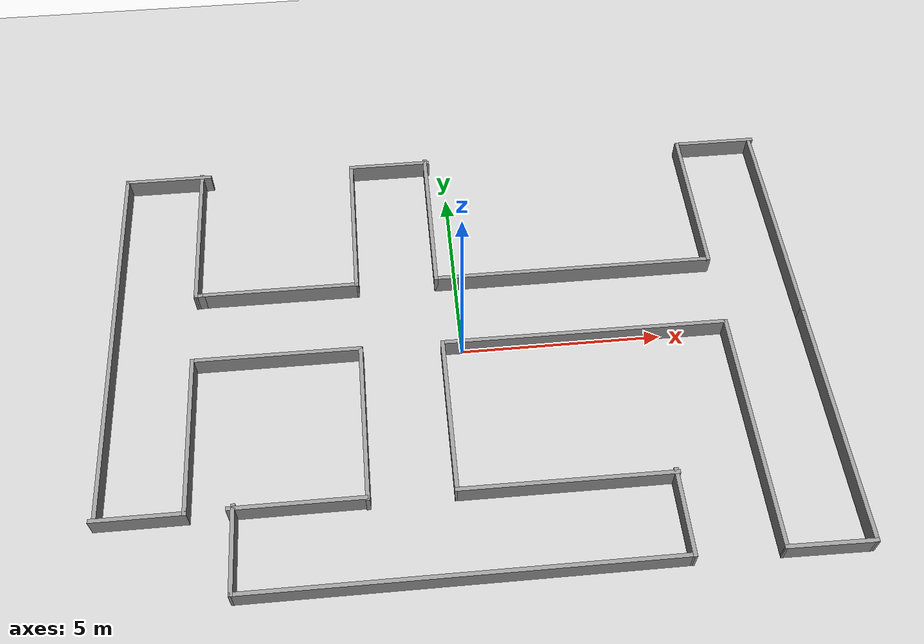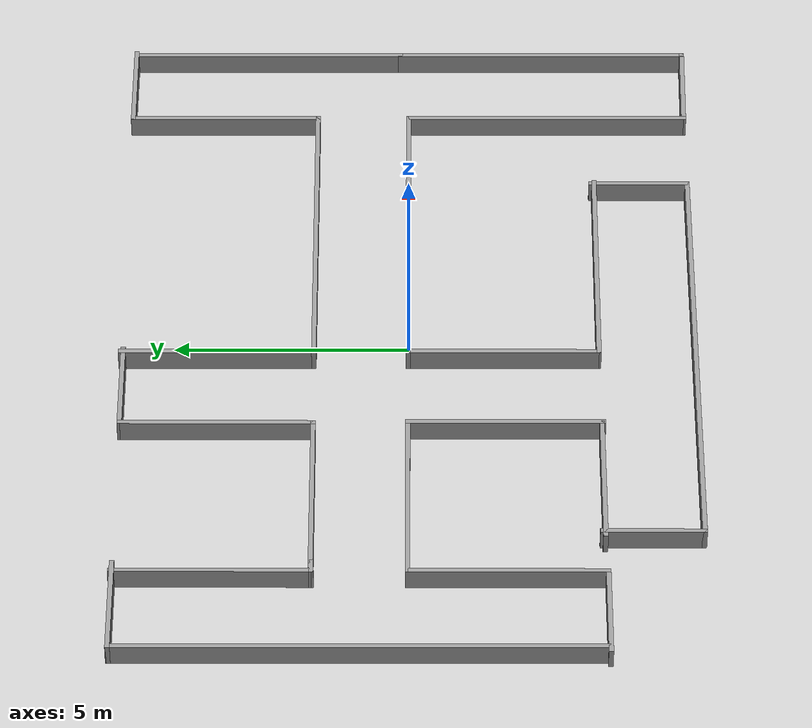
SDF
<sdf version="1.4">
 <world name="default">
  <light name="sun" type="directional">
   <pose>0 0 10 0 -0 0</pose>
   <diffuse>0.8 0.8 0.8 1</diffuse>
   <specular>0.2 0.2 0.2 1</specular>
   <attenuation>
    <range>1000</range>
    <constant>0.9</constant>
    <linear>0.01</linear>
    <quadratic>0.001</quadratic>
   </attenuation>
   <direction>-0.5 0.1 -0.9</direction>
  </light>
  <model name="ground_plane">
   <static>1</static>
   <link name="link">
    <collision name="collision">
     <geometry><plane><normal>0 0 1</normal><size>100 100</size></plane></geometry>
     <surface><friction><ode><mu>100</mu><mu2>50</mu2></ode></friction></surface>
    </collision>
    <visual name="visual">
     <cast_shadows>0</cast_shadows>
     <geometry><plane><normal>0 0 1</normal><size>100 100</size></plane></geometry>
     <material>
      <script><uri>file://media/materials/scripts/gazebo.material</uri><name>Gazebo/Grey</name></script>
     </material>
    </visual>
    <velocity_decay><linear>0</linear><angular>0</angular></velocity_decay>
   </link>
  </model>
  <model name="const_lane_map">
   <link name="Wall_20">
    <collision name="Wall_20_Collision">
     <geometry><box><size>4.2 0.1 0.5</size></box></geometry>
     <pose>0 0 0.25 0 -0 0</pose>
    </collision>
    <visual name="Wall_20_Visual">
     <pose>0 0 0.25 0 -0 0</pose>
     <geometry><box><size>4.2 0.1 0.5</size></box></geometry>
     <material>
      <script><uri>file://media/materials/scripts/gazebo.material</uri><name>Gazebo/Grey</name></script>
     </material>
    </visual>
    <pose>-0.49 4.06683 0 0 -0 1.5708</pose>
   </link>
   <link name="Wall_23">
    <collision name="Wall_23_Collision">
     <geometry><box><size>3.95 0.1 0.5</size></box></geometry>
     <pose>0 0 0.25 0 -0 0</pose>
    </collision>
    <visual name="Wall_23_Visual">
     <pose>0 0 0.25 0 -0 0</pose>
     <geometry><box><size>3.95 0.1 0.5</size></box></geometry>
     <material>
      <script><uri>file://media/materials/scripts/gazebo.material</uri><name>Gazebo/Grey</name></script>
     </material>
    </visual>
    <pose>-4.461 2.00283 0 0 -0 3.14159</pose>
   </link>
   <link name="Wall_26">
    <collision name="Wall_26_Collision">
     <geometry><box><size>4.2 0.1 0.5</size></box></geometry>
     <pose>0 0 0.25 0 -0 0</pose>
    </collision>
    <visual name="Wall_26_Visual">
     <pose>0 0 0.25 0 -0 0</pose>
     <geometry><box><size>4.2 0.1 0.5</size></box></geometry>
     <material>
      <script><uri>file://media/materials/scripts/gazebo.material</uri><name>Gazebo/Grey</name></script>
     </material>
    </visual>
    <pose>-6.613 4.04083 0 0 -0 1.5708</pose>
   </link>
   <link name="Wall_28">
    <collision name="Wall_28_Collision">
     <geometry><box><size>0.327317 0.1 0.5</size></box></geometry>
     <pose>0 0 0.25 0 -0 0</pose>
    </collision>
    <visual name="Wall_28_Visual">
     <pose>0 0 0.25 0 -0 0</pose>
     <geometry><box><size>0.327317 0.1 0.5</size></box></geometry>
     <material>
      <script><uri>file://media/materials/scripts/gazebo.material</uri><name>Gazebo/Grey</name></script>
     </material>
    </visual>
    <pose>-6.4995 1.99683 0 0 0 -3.08878</pose>
   </link>
   <link name="Wall_3">
    <collision name="Wall_3_Collision">
     <geometry><box><size>10.183 0.1 0.5</size></box></geometry>
     <pose>0 0 0.25 0 -0 0</pose>
    </collision>
    <visual name="Wall_3_Visual">
     <pose>0 0 0.25 0 -0 0</pose>
     <geometry><box><size>10.183 0.1 0.5</size></box></geometry>
     <material>
      <script><uri>file://media/materials/scripts/gazebo.material</uri><name>Gazebo/Grey</name></script>
     </material>
    </visual>
    <pose>-8.622 1.01833 0 0 0 -1.5708</pose>
   </link>
   <link name="Wall_30">
    <collision name="Wall_30_Collision">
     <geometry><box><size>4.159 0.1 0.5</size></box></geometry>
     <pose>0 0 0.25 0 -0 0</pose>
    </collision>
    <visual name="Wall_30_Visual">
     <pose>0 0 0.25 0 -0 0</pose>
     <geometry><box><size>4.159 0.1 0.5</size></box></geometry>
     <material>
      <script><uri>file://media/materials/scripts/gazebo.material</uri><name>Gazebo/Grey</name></script>
     </material>
    </visual>
    <pose>-2.533 4.03233 0 0 0 -1.57228</pose>
   </link>
   <link name="Wall_33">
    <collision name="Wall_33_Collision">
     <geometry><box><size>2.2 0.1 0.5</size></box></geometry>
     <pose>0 0 0.25 0 -0 0</pose>
    </collision>
    <visual name="Wall_33_Visual">
     <pose>0 0 0.25 0 -0 0</pose>
     <geometry><box><size>2.2 0.1 0.5</size></box></geometry>
     <material>
      <script><uri>file://media/materials/scripts/gazebo.material</uri><name>Gazebo/Grey</name></script>
     </material>
    </visual>
    <pose>-1.48 6.06183 0 0 -0 0</pose>
   </link>
   <link name="Wall_35">
    <collision name="Wall_35_Collision">
     <geometry><box><size>7.2 0.1 0.5</size></box></geometry>
     <pose>0 0 0.25 0 -0 0</pose>
    </collision>
    <visual name="Wall_35_Visual">
     <pose>0 0 0.25 0 -0 0</pose>
     <geometry><box><size>7.2 0.1 0.5</size></box></geometry>
     <material>
      <script><uri>file://media/materials/scripts/gazebo.material</uri><name>Gazebo/Grey</name></script>
     </material>
    </visual>
    <pose>3.06 2.01683 0 0 -0 0</pose>
   </link>
   <link name="Wall_38">
    <collision name="Wall_38_Collision">
     <geometry><box><size>4.2 0.1 0.5</size></box></geometry>
     <pose>0 0 0.25 0 -0 0</pose>
    </collision>
    <visual name="Wall_38_Visual">
     <pose>0 0 0.25 0 -0 0</pose>
     <geometry><box><size>4.2 0.1 0.5</size></box></geometry>
     <material>
      <script><uri>file://media/materials/scripts/gazebo.material</uri><name>Gazebo/Grey</name></script>
     </material>
    </visual>
    <pose>6.61 4.06683 0 0 -0 1.5708</pose>
   </link>
   <link name="Wall_39">
    <collision name="Wall_39_Collision">
     <geometry><box><size>2.2 0.1 0.5</size></box></geometry>
     <pose>0 0 0.25 0 -0 0</pose>
    </collision>
    <visual name="Wall_39_Visual">
     <pose>0 0 0.25 0 -0 0</pose>
     <geometry><box><size>2.2 0.1 0.5</size></box></geometry>
     <material>
      <script><uri>file://media/materials/scripts/gazebo.material</uri><name>Gazebo/Grey</name></script>
     </material>
    </visual>
    <pose>7.66 6.11683 0 0 -0 0</pose>
   </link>
   <link name="Wall_44">
    <collision name="Wall_44_Collision">
     <geometry><box><size>6.415 0.1 0.5</size></box></geometry>
     <pose>0 0 0.25 0 -0 0</pose>
    </collision>
    <visual name="Wall_44_Visual">
     <pose>0 0 0.25 0 -0 0</pose>
     <geometry><box><size>6.415 0.1 0.5</size></box></geometry>
     <material>
      <script><uri>file://media/materials/scripts/gazebo.material</uri><name>Gazebo/Grey</name></script>
     </material>
    </visual>
    <pose>8.639 -2.95867 0 0 -0 1.5708</pose>
   </link>
   <link name="Wall_46">
    <collision name="Wall_46_Collision">
     <geometry><box><size>5.95 0.1 0.5</size></box></geometry>
     <pose>0 0 0.25 0 -0 0</pose>
    </collision>
    <visual name="Wall_46_Visual">
     <pose>0 0 0.25 0 -0 0</pose>
     <geometry><box><size>5.95 0.1 0.5</size></box></geometry>
     <material>
      <script><uri>file://media/materials/scripts/gazebo.material</uri><name>Gazebo/Grey</name></script>
     </material>
    </visual>
    <pose>8.639 3.12383 0 0 -0 1.5708</pose>
   </link>
   <link name="Wall_48">
    <collision name="Wall_48_Collision">
     <geometry><box><size>2.12318 0.1 0.5</size></box></geometry>
     <pose>0 0 0.25 0 -0 0</pose>
    </collision>
    <visual name="Wall_48_Visual">
     <pose>0 0 0.25 0 -0 0</pose>
     <geometry><box><size>2.12318 0.1 0.5</size></box></geometry>
     <material>
      <script><uri>file://media/materials/scripts/gazebo.material</uri><name>Gazebo/Grey</name></script>
     </material>
    </visual>
    <pose>7.6275 -6.10267 0 0 0 -0.013346</pose>
   </link>
   <link name="Wall_5">
    <collision name="Wall_5_Collision">
     <geometry><box><size>2.19 0.1 0.5</size></box></geometry>
     <pose>0 0 0.25 0 -0 0</pose>
    </collision>
    <visual name="Wall_5_Visual">
     <pose>0 0 0.25 0 -0 0</pose>
     <geometry><box><size>2.19 0.1 0.5</size></box></geometry>
     <material>
      <script><uri>file://media/materials/scripts/gazebo.material</uri><name>Gazebo/Grey</name></script>
     </material>
    </visual>
    <pose>-7.665 -4.08017 0 0 -0 3.14159</pose>
   </link>
   <link name="Wall_50">
    <collision name="Wall_50_Collision">
     <geometry><box><size>6.2 0.1 0.5</size></box></geometry>
     <pose>0 0 0.25 0 -0 0</pose>
    </collision>
    <visual name="Wall_50_Visual">
     <pose>0 0 0.25 0 -0 0</pose>
     <geometry><box><size>6.2 0.1 0.5</size></box></geometry>
     <material>
      <script><uri>file://media/materials/scripts/gazebo.material</uri><name>Gazebo/Grey</name></script>
     </material>
    </visual>
    <pose>6.616 -3.03917 0 0 -0 1.5708</pose>
   </link>
   <link name="Wall_51">
    <collision name="Wall_51_Collision">
     <geometry><box><size>7.2 0.1 0.5</size></box></geometry>
     <pose>0 0 0.25 0 -0 0</pose>
    </collision>
    <visual name="Wall_51_Visual">
     <pose>0 0 0.25 0 -0 0</pose>
     <geometry><box><size>7.2 0.1 0.5</size></box></geometry>
     <material>
      <script><uri>file://media/materials/scripts/gazebo.material</uri><name>Gazebo/Grey</name></script>
     </material>
    </visual>
    <pose>3.066 0.010831 0 0 -0 3.14159</pose>
   </link>
   <link name="Wall_52">
    <collision name="Wall_52_Collision">
     <geometry><box><size>4.147 0.1 0.5</size></box></geometry>
     <pose>0 0 0.25 0 -0 0</pose>
    </collision>
    <visual name="Wall_52_Visual">
     <pose>0 0 0.25 0 -0 0</pose>
     <geometry><box><size>4.147 0.1 0.5</size></box></geometry>
     <material>
      <script><uri>file://media/materials/scripts/gazebo.material</uri><name>Gazebo/Grey</name></script>
     </material>
    </visual>
    <pose>-0.484 -2.01267 0 0 0 -1.5708</pose>
   </link>
   <link name="Wall_53">
    <collision name="Wall_53_Collision">
     <geometry><box><size>5.18602 0.1 0.5</size></box></geometry>
     <pose>0 0 0.25 0 -0 0</pose>
    </collision>
    <visual name="Wall_53_Visual">
     <pose>0 0 0.25 0 -0 0</pose>
     <geometry><box><size>5.18602 0.1 0.5</size></box></geometry>
     <material>
      <script><uri>file://media/materials/scripts/gazebo.material</uri><name>Gazebo/Grey</name></script>
     </material>
    </visual>
    <pose>2.059 -4.04317 0 0 0 -0.002753</pose>
   </link>
   <link name="Wall_56">
    <collision name="Wall_56_Collision">
     <geometry><box><size>2.2 0.1 0.5</size></box></geometry>
     <pose>0 0 0.25 0 -0 0</pose>
    </collision>
    <visual name="Wall_56_Visual">
     <pose>0 0 0.25 0 -0 0</pose>
     <geometry><box><size>2.2 0.1 0.5</size></box></geometry>
     <material>
      <script><uri>file://media/materials/scripts/gazebo.material</uri><name>Gazebo/Grey</name></script>
     </material>
    </visual>
    <pose>4.566 -5.03917 0 0 -0 1.5708</pose>
   </link>
   <link name="Wall_58">
    <collision name="Wall_58_Collision">
     <geometry><box><size>10.208 0.1 0.5</size></box></geometry>
     <pose>0 0 0.25 0 -0 0</pose>
    </collision>
    <visual name="Wall_58_Visual">
     <pose>0 0 0.25 0 -0 0</pose>
     <geometry><box><size>10.208 0.1 0.5</size></box></geometry>
     <material>
      <script><uri>file://media/materials/scripts/gazebo.material</uri><name>Gazebo/Grey</name></script>
     </material>
    </visual>
    <pose>-0.488 -6.08867 0 0 0 -9.9e-05</pose>
   </link>
   <link name="Wall_60">
    <collision name="Wall_60_Collision">
     <geometry><box><size>2.2 0.1 0.5</size></box></geometry>
     <pose>0 0 0.25 0 -0 0</pose>
    </collision>
    <visual name="Wall_60_Visual">
     <pose>0 0 0.25 0 -0 0</pose>
     <geometry><box><size>2.2 0.1 0.5</size></box></geometry>
     <material>
      <script><uri>file://media/materials/scripts/gazebo.material</uri><name>Gazebo/Grey</name></script>
     </material>
    </visual>
    <pose>-5.542 -5.03817 0 0 -0 1.5708</pose>
   </link>
   <link name="Wall_62">
    <collision name="Wall_62_Collision">
     <geometry><box><size>3.2 0.1 0.5</size></box></geometry>
     <pose>0 0 0.25 0 -0 0</pose>
    </collision>
    <visual name="Wall_62_Visual">
     <pose>0 0 0.25 0 -0 0</pose>
     <geometry><box><size>3.2 0.1 0.5</size></box></geometry>
     <material>
      <script><uri>file://media/materials/scripts/gazebo.material</uri><name>Gazebo/Grey</name></script>
     </material>
    </visual>
    <pose>-4.096 -4.05017 0 0 -0 3.14159</pose>
   </link>
   <link name="Wall_64">
    <collision name="Wall_64_Collision">
     <geometry><box><size>4.2 0.1 0.5</size></box></geometry>
     <pose>0 0 0.25 0 -0 0</pose>
    </collision>
    <visual name="Wall_64_Visual">
     <pose>0 0 0.25 0 -0 0</pose>
     <geometry><box><size>4.2 0.1 0.5</size></box></geometry>
     <material>
      <script><uri>file://media/materials/scripts/gazebo.material</uri><name>Gazebo/Grey</name></script>
     </material>
    </visual>
    <pose>-6.62 -2.03017 0 0 -0 1.5708</pose>
   </link>
   <link name="Wall_65">
    <collision name="Wall_65_Collision">
     <geometry><box><size>4.21 0.1 0.5</size></box></geometry>
     <pose>0 0 0.25 0 -0 0</pose>
    </collision>
    <visual name="Wall_65_Visual">
     <pose>0 0 0.25 0 -0 0</pose>
     <geometry><box><size>4.21 0.1 0.5</size></box></geometry>
     <material>
      <script><uri>file://media/materials/scripts/gazebo.material</uri><name>Gazebo/Grey</name></script>
     </material>
    </visual>
    <pose>-4.565 0.019831 0 0 -0 0</pose>
   </link>
   <link name="Wall_66">
    <collision name="Wall_66_Collision">
     <geometry><box><size>4.2 0.1 0.5</size></box></geometry>
     <pose>0 0 0.25 0 -0 0</pose>
    </collision>
    <visual name="Wall_66_Visual">
     <pose>0 0 0.25 0 -0 0</pose>
     <geometry><box><size>4.2 0.1 0.5</size></box></geometry>
     <material>
      <script><uri>file://media/materials/scripts/gazebo.material</uri><name>Gazebo/Grey</name></script>
     </material>
    </visual>
    <pose>-2.51 -2.03017 0 0 0 -1.5708</pose>
   </link>
   <link name="Wall_7">
    <collision name="Wall_7_Collision">
     <geometry><box><size>2.312 0.1 0.5</size></box></geometry>
     <pose>0 0 0.25 0 -0 0</pose>
    </collision>
    <visual name="Wall_7_Visual">
     <pose>0 0 0.25 0 -0 0</pose>
     <geometry><box><size>2.312 0.1 0.5</size></box></geometry>
     <material>
      <script><uri>file://media/materials/scripts/gazebo.material</uri><name>Gazebo/Grey</name></script>
     </material>
    </visual>
    <pose>-7.516 6.05933 0 0 -0 3.14114</pose>
   </link>
   <static>1</static>
  </model>
  <physics type="ode">
   <max_step_size>0.001</max_step_size>
   <real_time_factor>1</real_time_factor>
   <real_time_update_rate>1000</real_time_update_rate>
   <gravity>0 0 -9.8</gravity>
  </physics>
  <scene><ambient>0.4 0.4 0.4 1</ambient><background>0.7 0.7 0.7 1</background><shadows>1</shadows></scene>
  <spherical_coordinates>
   <surface_model>EARTH_WGS84</surface_model>
   <latitude_deg>0</latitude_deg>
   <longitude_deg>0</longitude_deg>
   <elevation>0</elevation>
   <heading_deg>0</heading_deg>
  </spherical_coordinates>
 </world>
</sdf>
